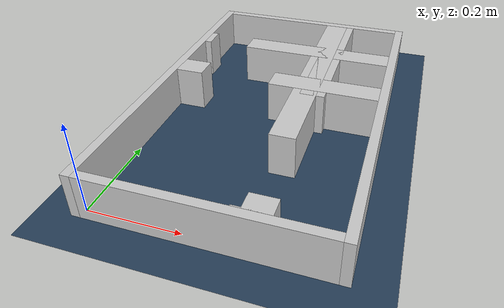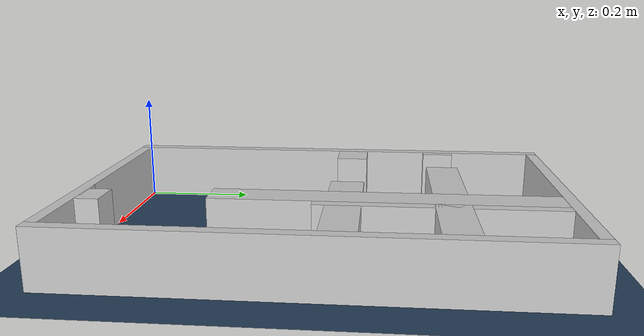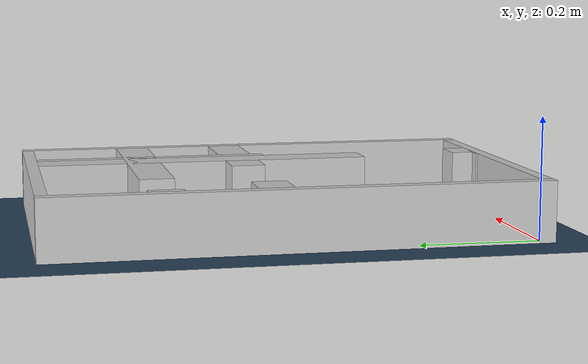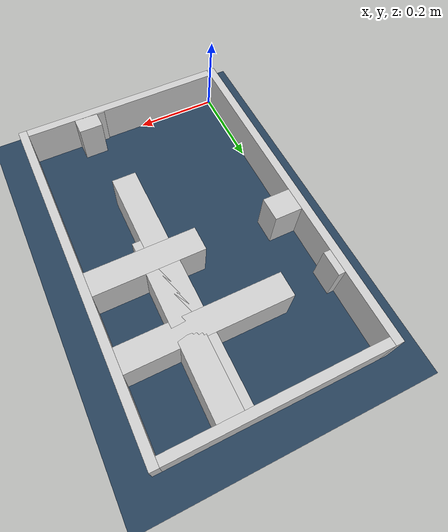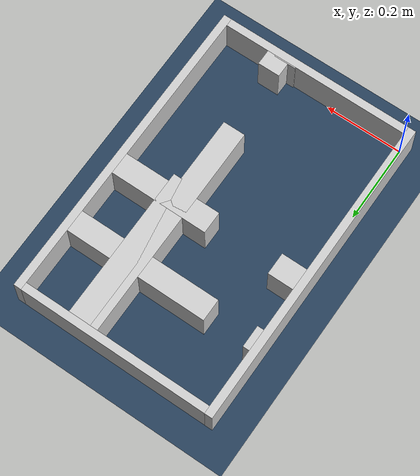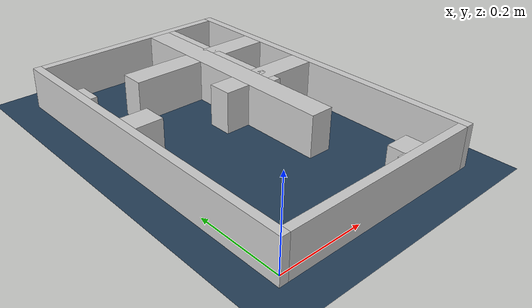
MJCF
<?xml version="1.0" ?>
<mujoco model="generated_real_template">
  <compiler angle="degree"/>
  <option timestep="0.002" integrator="implicitfast" iterations="100" cone="elliptic"/>
  <default>
    <geom density="1"/>
  </default>
  <asset>
    <texture builtin="gradient" height="3072" rgb1="0.3 0.5 0.7" rgb2="0 0 0" type="skybox" width="512"/>
    <texture builtin="checker" height="300" mark="edge" markrgb="0.8 0.8 0.8" name="groundplane" rgb1="0.2 0.3 0.4" rgb2="0.1 0.2 0.3" type="2d" width="300"/>
    <material name="groundplane" reflectance="0.2" texrepeat="5 5" texture="groundplane" texuniform="true"/>
  </asset>
  <worldbody>
    <light dir="0 0 -1" directional="true" pos="0 0 1.5"/>
    <geom name="floor" type="plane" condim="4" friction="0.5 0.005 0.001" material="groundplane" size="0 0 0.05"/>
    <body name="walls">
      <geom name="wall_boundary_left" type="box" condim="4" friction="1.0 0.005 0.0001" rgba="0.8 0.8 0.8 1" pos="-0.010000 0.387500 0.050000" euler="0 0 0.000000" size="0.010000 0.407500 0.050000"/>
      <geom name="wall_boundary_right" type="box" condim="4" friction="1.0 0.005 0.0001" rgba="0.8 0.8 0.8 1" pos="0.500000 0.387500 0.050000" euler="0 0 0.000000" size="0.010000 0.407500 0.050000"/>
      <geom name="wall_boundary_bottom" type="box" condim="4" friction="1.0 0.005 0.0001" rgba="0.8 0.8 0.8 1" pos="0.245000 -0.010000 0.050000" euler="0 0 0.000000" size="0.245000 0.010000 0.050000"/>
      <geom name="wall_boundary_top" type="box" condim="4" friction="1.0 0.005 0.0001" rgba="0.8 0.8 0.8 1" pos="0.245000 0.785000 0.050000" euler="0 0 0.000000" size="0.245000 0.010000 0.050000"/>
      <geom name="wall_inner_1_1" type="box" condim="4" friction="1.0 0.005 0.0001" rgba="0.8 0.8 0.8 1" pos="0.008261 0.597161 0.050000" euler="0 0 0.000000" size="0.008261 0.028500 0.050000"/>
      <geom name="wall_inner_1_2" type="box" condim="4" friction="1.0 0.005 0.0001" rgba="0.8 0.8 0.8 1" pos="0.305063 0.597161 0.050000" euler="0 0 0.000000" size="0.184937 0.028500 0.050000"/>
      <geom name="wall_inner_2_1" type="box" condim="4" friction="1.0 0.005 0.0001" rgba="0.8 0.8 0.8 1" pos="0.325216 0.001438 0.050000" euler="0 0 90.000000" size="0.001438 0.028500 0.050000"/>
      <geom name="wall_inner_2_2" type="box" condim="4" friction="1.0 0.005 0.0001" rgba="0.8 0.8 0.8 1" pos="0.325216 0.491750 0.050000" euler="0 0 90.000000" size="0.283250 0.028500 0.050000"/>
      <geom name="wall_inner_3_1" type="box" condim="4" friction="1.0 0.005 0.0001" rgba="0.8 0.8 0.8 1" pos="0.344596 0.020032 0.050000" euler="0 0 90.000000" size="0.020032 0.028500 0.050000"/>
      <geom name="wall_inner_3_2" type="box" condim="4" friction="1.0 0.005 0.0001" rgba="0.8 0.8 0.8 1" pos="0.344596 0.576908 0.050000" euler="0 0 90.000000" size="0.198092 0.028500 0.050000"/>
      <geom name="wall_inner_4_1" type="box" condim="4" friction="1.0 0.005 0.0001" rgba="0.8 0.8 0.8 1" pos="0.032915 0.427534 0.050000" euler="0 0 0.000000" size="0.032915 0.028500 0.050000"/>
      <geom name="wall_inner_4_2" type="box" condim="4" friction="1.0 0.005 0.0001" rgba="0.8 0.8 0.8 1" pos="0.362565 0.427534 0.050000" euler="0 0 0.000000" size="0.127435 0.028500 0.050000"/>
    </body>
  </worldbody>
</mujoco>
